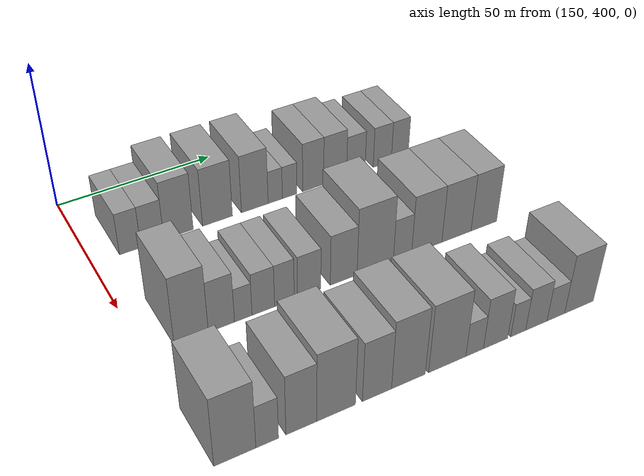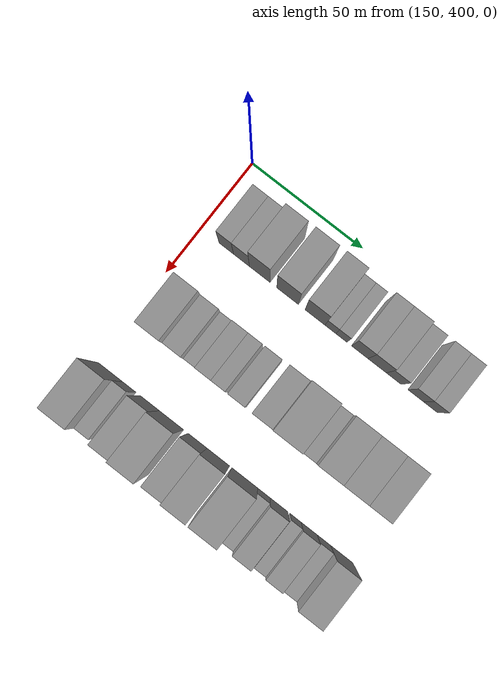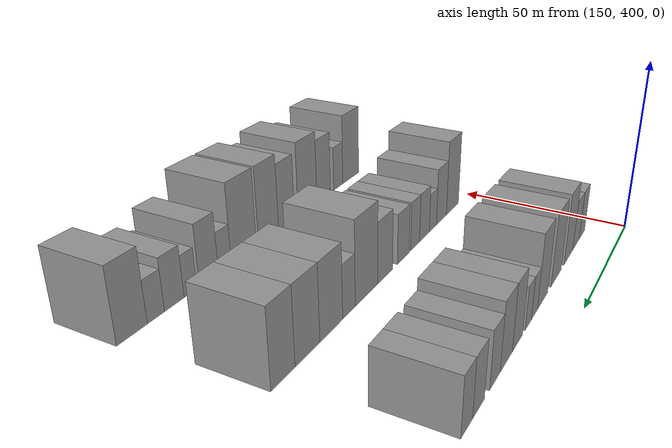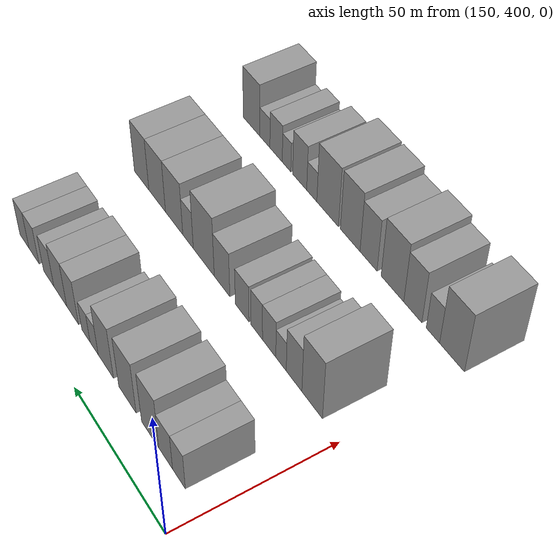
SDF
<sdf version="1.6">
 <world name="default">
  <model name="building_516">
   <static>1</static>
   <pose>170.0000 411.6567 0 0.000000 0.000000 0.000000</pose>
   <link name="link">
    <pose>0 0 7.50 0 0 0</pose>
    <collision name="collision"><geometry><box><size>20.0000 6.5364 15.0000</size></box></geometry></collision>
    <visual name="visual">
     <cast_shadows>0</cast_shadows>
     <geometry><box><size>20.0000 6.5364 15.0000</size></box></geometry>
     <material>
      <script>
       <uri>model://grey_wall/materials/scripts</uri>
       <uri>model://grey_wall/materials/textures</uri>
       <name>vrc/grey_wall</name>
      </script>
     </material>
    </visual>
   </link>
  </model>
  <model name="building_517">
   <static>1</static>
   <pose>170.0000 418.5098 0 0.000000 0.000000 0.000000</pose>
   <link name="link">
    <pose>0 0 7.50 0 0 0</pose>
    <collision name="collision"><geometry><box><size>20.0000 7.1698 15.0000</size></box></geometry></collision>
    <visual name="visual">
     <cast_shadows>0</cast_shadows>
     <geometry><box><size>20.0000 7.1698 15.0000</size></box></geometry>
     <material>
      <script>
       <uri>model://grey_wall/materials/scripts</uri>
       <uri>model://grey_wall/materials/textures</uri>
       <name>vrc/grey_wall</name>
      </script>
     </material>
    </visual>
   </link>
  </model>
  <model name="building_518">
   <static>1</static>
   <pose>170.0000 426.7633 0 0.000000 0.000000 0.000000</pose>
   <link name="link">
    <pose>0 0 10.50 0 0 0</pose>
    <collision name="collision"><geometry><box><size>20.0000 9.3373 21.0000</size></box></geometry></collision>
    <visual name="visual">
     <cast_shadows>0</cast_shadows>
     <geometry><box><size>20.0000 9.3373 21.0000</size></box></geometry>
     <material>
      <script>
       <uri>model://grey_wall/materials/scripts</uri>
       <uri>model://grey_wall/materials/textures</uri>
       <name>vrc/grey_wall</name>
      </script>
     </material>
    </visual>
   </link>
  </model>
  <model name="building_519">
   <static>1</static>
   <pose>170.0000 439.3193 0 0.000000 0.000000 0.000000</pose>
   <link name="link">
    <pose>0 0 10.50 0 0 0</pose>
    <collision name="collision"><geometry><box><size>20.0000 9.7746 21.0000</size></box></geometry></collision>
    <visual name="visual">
     <cast_shadows>0</cast_shadows>
     <geometry><box><size>20.0000 9.7746 21.0000</size></box></geometry>
     <material>
      <script>
       <uri>model://grey_wall/materials/scripts</uri>
       <uri>model://grey_wall/materials/textures</uri>
       <name>vrc/grey_wall</name>
      </script>
     </material>
    </visual>
   </link>
  </model>
  <model name="building_520">
   <static>1</static>
   <pose>170.0000 451.6900 0 0.000000 0.000000 0.000000</pose>
   <link name="link">
    <pose>0 0 10.50 0 0 0</pose>
    <collision name="collision"><geometry><box><size>20.0000 8.9669 21.0000</size></box></geometry></collision>
    <visual name="visual">
     <cast_shadows>0</cast_shadows>
     <geometry><box><size>20.0000 8.9669 21.0000</size></box></geometry>
     <material>
      <script>
       <uri>model://grey_wall/materials/scripts</uri>
       <uri>model://grey_wall/materials/textures</uri>
       <name>vrc/grey_wall</name>
      </script>
     </material>
    </visual>
   </link>
  </model>
  <model name="building_521">
   <static>1</static>
   <pose>170.0000 458.6050 0 0.000000 0.000000 0.000000</pose>
   <link name="link">
    <pose>0 0 6.00 0 0 0</pose>
    <collision name="collision"><geometry><box><size>20.0000 4.8632 12.0000</size></box></geometry></collision>
    <visual name="visual">
     <cast_shadows>0</cast_shadows>
     <geometry><box><size>20.0000 4.8632 12.0000</size></box></geometry>
     <material>
      <script>
       <uri>model://grey_wall/materials/scripts</uri>
       <uri>model://grey_wall/materials/textures</uri>
       <name>vrc/grey_wall</name>
      </script>
     </material>
    </visual>
   </link>
  </model>
  <model name="building_522">
   <static>1</static>
   <pose>170.0000 463.5516 0 0.000000 0.000000 0.000000</pose>
   <link name="link">
    <pose>0 0 6.00 0 0 0</pose>
    <collision name="collision"><geometry><box><size>20.0000 5.0298 12.0000</size></box></geometry></collision>
    <visual name="visual">
     <cast_shadows>0</cast_shadows>
     <geometry><box><size>20.0000 5.0298 12.0000</size></box></geometry>
     <material>
      <script>
       <uri>model://grey_wall/materials/scripts</uri>
       <uri>model://grey_wall/materials/textures</uri>
       <name>vrc/grey_wall</name>
      </script>
     </material>
    </visual>
   </link>
  </model>
  <model name="building_523">
   <static>1</static>
   <pose>170.0000 471.7505 0 0.000000 0.000000 0.000000</pose>
   <link name="link">
    <pose>0 0 9.00 0 0 0</pose>
    <collision name="collision"><geometry><box><size>20.0000 7.3681 18.0000</size></box></geometry></collision>
    <visual name="visual">
     <cast_shadows>0</cast_shadows>
     <geometry><box><size>20.0000 7.3681 18.0000</size></box></geometry>
     <material>
      <script>
       <uri>model://grey_wall/materials/scripts</uri>
       <uri>model://grey_wall/materials/textures</uri>
       <name>vrc/grey_wall</name>
      </script>
     </material>
    </visual>
   </link>
  </model>
  <model name="building_524">
   <static>1</static>
   <pose>170.0000 479.5307 0 0.000000 0.000000 0.000000</pose>
   <link name="link">
    <pose>0 0 9.00 0 0 0</pose>
    <collision name="collision"><geometry><box><size>20.0000 8.1923 18.0000</size></box></geometry></collision>
    <visual name="visual">
     <cast_shadows>0</cast_shadows>
     <geometry><box><size>20.0000 8.1923 18.0000</size></box></geometry>
     <material>
      <script>
       <uri>model://grey_wall/materials/scripts</uri>
       <uri>model://grey_wall/materials/textures</uri>
       <name>vrc/grey_wall</name>
      </script>
     </material>
    </visual>
   </link>
  </model>
  <model name="building_525">
   <static>1</static>
   <pose>170.0000 486.9849 0 0.000000 0.000000 0.000000</pose>
   <link name="link">
    <pose>0 0 7.50 0 0 0</pose>
    <collision name="collision"><geometry><box><size>20.0000 6.7159 15.0000</size></box></geometry></collision>
    <visual name="visual">
     <cast_shadows>0</cast_shadows>
     <geometry><box><size>20.0000 6.7159 15.0000</size></box></geometry>
     <material>
      <script>
       <uri>model://grey_wall/materials/scripts</uri>
       <uri>model://grey_wall/materials/textures</uri>
       <name>vrc/grey_wall</name>
      </script>
     </material>
    </visual>
   </link>
  </model>
  <model name="building_526">
   <static>1</static>
   <pose>170.0000 496.7155 0 0.000000 0.000000 0.000000</pose>
   <link name="link">
    <pose>0 0 7.50 0 0 0</pose>
    <collision name="collision"><geometry><box><size>20.0000 6.7454 15.0000</size></box></geometry></collision>
    <visual name="visual">
     <cast_shadows>0</cast_shadows>
     <geometry><box><size>20.0000 6.7454 15.0000</size></box></geometry>
     <material>
      <script>
       <uri>model://grey_wall/materials/scripts</uri>
       <uri>model://grey_wall/materials/textures</uri>
       <name>vrc/grey_wall</name>
      </script>
     </material>
    </visual>
   </link>
  </model>
  <model name="building_527">
   <static>1</static>
   <pose>170.0000 503.2382 0 0.000000 0.000000 0.000000</pose>
   <link name="link">
    <pose>0 0 7.50 0 0 0</pose>
    <collision name="collision"><geometry><box><size>20.0000 6.2999 15.0000</size></box></geometry></collision>
    <visual name="visual">
     <cast_shadows>0</cast_shadows>
     <geometry><box><size>20.0000 6.2999 15.0000</size></box></geometry>
     <material>
      <script>
       <uri>model://grey_wall/materials/scripts</uri>
       <uri>model://grey_wall/materials/textures</uri>
       <name>vrc/grey_wall</name>
      </script>
     </material>
    </visual>
   </link>
  </model>
  <model name="building_654">
   <static>1</static>
   <pose>210.0000 413.0757 0 0.000000 0.000000 0.000000</pose>
   <link name="link">
    <pose>0 0 12.00 0 0 0</pose>
    <collision name="collision"><geometry><box><size>20.0000 9.8297 24.0000</size></box></geometry></collision>
    <visual name="visual">
     <cast_shadows>0</cast_shadows>
     <geometry><box><size>20.0000 9.8297 24.0000</size></box></geometry>
     <material>
      <script>
       <uri>model://grey_wall/materials/scripts</uri>
       <uri>model://grey_wall/materials/textures</uri>
       <name>vrc/grey_wall</name>
      </script>
     </material>
    </visual>
   </link>
  </model>
  <model name="building_655">
   <static>1</static>
   <pose>210.0000 421.8358 0 0.000000 0.000000 0.000000</pose>
   <link name="link">
    <pose>0 0 9.00 0 0 0</pose>
    <collision name="collision"><geometry><box><size>20.0000 7.6905 18.0000</size></box></geometry></collision>
    <visual name="visual">
     <cast_shadows>0</cast_shadows>
     <geometry><box><size>20.0000 7.6905 18.0000</size></box></geometry>
     <material>
      <script>
       <uri>model://grey_wall/materials/scripts</uri>
       <uri>model://grey_wall/materials/textures</uri>
       <name>vrc/grey_wall</name>
      </script>
     </material>
    </visual>
   </link>
  </model>
  <model name="building_656">
   <static>1</static>
   <pose>210.0000 428.3003 0 0.000000 0.000000 0.000000</pose>
   <link name="link">
    <pose>0 0 6.00 0 0 0</pose>
    <collision name="collision"><geometry><box><size>20.0000 5.2385 12.0000</size></box></geometry></collision>
    <visual name="visual">
     <cast_shadows>0</cast_shadows>
     <geometry><box><size>20.0000 5.2385 12.0000</size></box></geometry>
     <material>
      <script>
       <uri>model://grey_wall/materials/scripts</uri>
       <uri>model://grey_wall/materials/textures</uri>
       <name>vrc/grey_wall</name>
      </script>
     </material>
    </visual>
   </link>
  </model>
  <model name="building_657">
   <static>1</static>
   <pose>210.0000 434.3405 0 0.000000 0.000000 0.000000</pose>
   <link name="link">
    <pose>0 0 7.50 0 0 0</pose>
    <collision name="collision"><geometry><box><size>20.0000 6.8418 15.0000</size></box></geometry></collision>
    <visual name="visual">
     <cast_shadows>0</cast_shadows>
     <geometry><box><size>20.0000 6.8418 15.0000</size></box></geometry>
     <material>
      <script>
       <uri>model://grey_wall/materials/scripts</uri>
       <uri>model://grey_wall/materials/textures</uri>
       <name>vrc/grey_wall</name>
      </script>
     </material>
    </visual>
   </link>
  </model>
  <model name="building_658">
   <static>1</static>
   <pose>210.0000 440.7841 0 0.000000 0.000000 0.000000</pose>
   <link name="link">
    <pose>0 0 7.50 0 0 0</pose>
    <collision name="collision"><geometry><box><size>20.0000 6.0456 15.0000</size></box></geometry></collision>
    <visual name="visual">
     <cast_shadows>0</cast_shadows>
     <geometry><box><size>20.0000 6.0456 15.0000</size></box></geometry>
     <material>
      <script>
       <uri>model://grey_wall/materials/scripts</uri>
       <uri>model://grey_wall/materials/textures</uri>
       <name>vrc/grey_wall</name>
      </script>
     </material>
    </visual>
   </link>
  </model>
  <model name="building_659">
   <static>1</static>
   <pose>210.0000 448.4721 0 0.000000 0.000000 0.000000</pose>
   <link name="link">
    <pose>0 0 7.50 0 0 0</pose>
    <collision name="collision"><geometry><box><size>20.0000 7.3304 15.0000</size></box></geometry></collision>
    <visual name="visual">
     <cast_shadows>0</cast_shadows>
     <geometry><box><size>20.0000 7.3304 15.0000</size></box></geometry>
     <material>
      <script>
       <uri>model://grey_wall/materials/scripts</uri>
       <uri>model://grey_wall/materials/textures</uri>
       <name>vrc/grey_wall</name>
      </script>
     </material>
    </visual>
   </link>
  </model>
  <model name="building_660">
   <static>1</static>
   <pose>210.0000 459.4520 0 0.000000 0.000000 0.000000</pose>
   <link name="link">
    <pose>0 0 9.00 0 0 0</pose>
    <collision name="collision"><geometry><box><size>20.0000 8.6294 18.0000</size></box></geometry></collision>
    <visual name="visual">
     <cast_shadows>0</cast_shadows>
     <geometry><box><size>20.0000 8.6294 18.0000</size></box></geometry>
     <material>
      <script>
       <uri>model://grey_wall/materials/scripts</uri>
       <uri>model://grey_wall/materials/textures</uri>
       <name>vrc/grey_wall</name>
      </script>
     </material>
    </visual>
   </link>
  </model>
  <model name="building_661">
   <static>1</static>
   <pose>210.0000 469.7653 0 0.000000 0.000000 0.000000</pose>
   <link name="link">
    <pose>0 0 12.00 0 0 0</pose>
    <collision name="collision"><geometry><box><size>20.0000 11.9972 24.0000</size></box></geometry></collision>
    <visual name="visual">
     <cast_shadows>0</cast_shadows>
     <geometry><box><size>20.0000 11.9972 24.0000</size></box></geometry>
     <material>
      <script>
       <uri>model://grey_wall/materials/scripts</uri>
       <uri>model://grey_wall/materials/textures</uri>
       <name>vrc/grey_wall</name>
      </script>
     </material>
    </visual>
   </link>
  </model>
  <model name="building_662">
   <static>1</static>
   <pose>210.0000 478.8574 0 0.000000 0.000000 0.000000</pose>
   <link name="link">
    <pose>0 0 7.50 0 0 0</pose>
    <collision name="collision"><geometry><box><size>20.0000 6.1870 15.0000</size></box></geometry></collision>
    <visual name="visual">
     <cast_shadows>0</cast_shadows>
     <geometry><box><size>20.0000 6.1870 15.0000</size></box></geometry>
     <material>
      <script>
       <uri>model://grey_wall/materials/scripts</uri>
       <uri>model://grey_wall/materials/textures</uri>
       <name>vrc/grey_wall</name>
      </script>
     </material>
    </visual>
   </link>
  </model>
  <model name="building_663">
   <static>1</static>
   <pose>210.0000 487.1656 0 0.000000 0.000000 0.000000</pose>
   <link name="link">
    <pose>0 0 10.50 0 0 0</pose>
    <collision name="collision"><geometry><box><size>20.0000 10.4295 21.0000</size></box></geometry></collision>
    <visual name="visual">
     <cast_shadows>0</cast_shadows>
     <geometry><box><size>20.0000 10.4295 21.0000</size></box></geometry>
     <material>
      <script>
       <uri>model://grey_wall/materials/scripts</uri>
       <uri>model://grey_wall/materials/textures</uri>
       <name>vrc/grey_wall</name>
      </script>
     </material>
    </visual>
   </link>
  </model>
  <model name="building_664">
   <static>1</static>
   <pose>210.0000 497.5308 0 0.000000 0.000000 0.000000</pose>
   <link name="link">
    <pose>0 0 10.50 0 0 0</pose>
    <collision name="collision"><geometry><box><size>20.0000 10.3009 21.0000</size></box></geometry></collision>
    <visual name="visual">
     <cast_shadows>0</cast_shadows>
     <geometry><box><size>20.0000 10.3009 21.0000</size></box></geometry>
     <material>
      <script>
       <uri>model://grey_wall/materials/scripts</uri>
       <uri>model://grey_wall/materials/textures</uri>
       <name>vrc/grey_wall</name>
      </script>
     </material>
    </visual>
   </link>
  </model>
  <model name="building_665">
   <static>1</static>
   <pose>210.0000 507.2967 0 0.000000 0.000000 0.000000</pose>
   <link name="link">
    <pose>0 0 10.50 0 0 0</pose>
    <collision name="collision"><geometry><box><size>20.0000 9.2308 21.0000</size></box></geometry></collision>
    <visual name="visual">
     <cast_shadows>0</cast_shadows>
     <geometry><box><size>20.0000 9.2308 21.0000</size></box></geometry>
     <material>
      <script>
       <uri>model://grey_wall/materials/scripts</uri>
       <uri>model://grey_wall/materials/textures</uri>
       <name>vrc/grey_wall</name>
      </script>
     </material>
    </visual>
   </link>
  </model>
  <model name="building_794">
   <static>1</static>
   <pose>250.0000 406.5885 0 0.000000 0.000000 0.000000</pose>
   <link name="link">
    <pose>0 0 12.00 0 0 0</pose>
    <collision name="collision"><geometry><box><size>20.0000 11.0333 24.0000</size></box></geometry></collision>
    <visual name="visual">
     <cast_shadows>0</cast_shadows>
     <geometry><box><size>20.0000 11.0333 24.0000</size></box></geometry>
     <material>
      <script>
       <uri>model://grey_wall/materials/scripts</uri>
       <uri>model://grey_wall/materials/textures</uri>
       <name>vrc/grey_wall</name>
      </script>
     </material>
    </visual>
   </link>
  </model>
  <model name="building_795">
   <static>1</static>
   <pose>250.0000 415.1516 0 0.000000 0.000000 0.000000</pose>
   <link name="link">
    <pose>0 0 7.50 0 0 0</pose>
    <collision name="collision"><geometry><box><size>20.0000 6.0928 15.0000</size></box></geometry></collision>
    <visual name="visual">
     <cast_shadows>0</cast_shadows>
     <geometry><box><size>20.0000 6.0928 15.0000</size></box></geometry>
     <material>
      <script>
       <uri>model://grey_wall/materials/scripts</uri>
       <uri>model://grey_wall/materials/textures</uri>
       <name>vrc/grey_wall</name>
      </script>
     </material>
    </visual>
   </link>
  </model>
  <model name="building_796">
   <static>1</static>
   <pose>250.0000 424.4468 0 0.000000 0.000000 0.000000</pose>
   <link name="link">
    <pose>0 0 10.50 0 0 0</pose>
    <collision name="collision"><geometry><box><size>20.0000 8.4977 21.0000</size></box></geometry></collision>
    <visual name="visual">
     <cast_shadows>0</cast_shadows>
     <geometry><box><size>20.0000 8.4977 21.0000</size></box></geometry>
     <material>
      <script>
       <uri>model://grey_wall/materials/scripts</uri>
       <uri>model://grey_wall/materials/textures</uri>
       <name>vrc/grey_wall</name>
      </script>
     </material>
    </visual>
   </link>
  </model>
  <model name="building_797">
   <static>1</static>
   <pose>250.0000 434.1774 0 0.000000 0.000000 0.000000</pose>
   <link name="link">
    <pose>0 0 12.00 0 0 0</pose>
    <collision name="collision"><geometry><box><size>20.0000 10.9636 24.0000</size></box></geometry></collision>
    <visual name="visual">
     <cast_shadows>0</cast_shadows>
     <geometry><box><size>20.0000 10.9636 24.0000</size></box></geometry>
     <material>
      <script>
       <uri>model://grey_wall/materials/scripts</uri>
       <uri>model://grey_wall/materials/textures</uri>
       <name>vrc/grey_wall</name>
      </script>
     </material>
    </visual>
   </link>
  </model>
  <model name="building_798">
   <static>1</static>
   <pose>250.0000 445.9232 0 0.000000 0.000000 0.000000</pose>
   <link name="link">
    <pose>0 0 10.50 0 0 0</pose>
    <collision name="collision"><geometry><box><size>20.0000 8.5279 21.0000</size></box></geometry></collision>
    <visual name="visual">
     <cast_shadows>0</cast_shadows>
     <geometry><box><size>20.0000 8.5279 21.0000</size></box></geometry>
     <material>
      <script>
       <uri>model://grey_wall/materials/scripts</uri>
       <uri>model://grey_wall/materials/textures</uri>
       <name>vrc/grey_wall</name>
      </script>
     </material>
    </visual>
   </link>
  </model>
  <model name="building_799">
   <static>1</static>
   <pose>250.0000 455.2482 0 0.000000 0.000000 0.000000</pose>
   <link name="link">
    <pose>0 0 12.00 0 0 0</pose>
    <collision name="collision"><geometry><box><size>20.0000 10.1222 24.0000</size></box></geometry></collision>
    <visual name="visual">
     <cast_shadows>0</cast_shadows>
     <geometry><box><size>20.0000 10.1222 24.0000</size></box></geometry>
     <material>
      <script>
       <uri>model://grey_wall/materials/scripts</uri>
       <uri>model://grey_wall/materials/textures</uri>
       <name>vrc/grey_wall</name>
      </script>
     </material>
    </visual>
   </link>
  </model>
  <model name="building_800">
   <static>1</static>
   <pose>250.0000 467.0812 0 0.000000 0.000000 0.000000</pose>
   <link name="link">
    <pose>0 0 12.00 0 0 0</pose>
    <collision name="collision"><geometry><box><size>20.0000 11.5438 24.0000</size></box></geometry></collision>
    <visual name="visual">
     <cast_shadows>0</cast_shadows>
     <geometry><box><size>20.0000 11.5438 24.0000</size></box></geometry>
     <material>
      <script>
       <uri>model://grey_wall/materials/scripts</uri>
       <uri>model://grey_wall/materials/textures</uri>
       <name>vrc/grey_wall</name>
      </script>
     </material>
    </visual>
   </link>
  </model>
  <model name="building_801">
   <static>1</static>
   <pose>250.0000 475.6279 0 0.000000 0.000000 0.000000</pose>
   <link name="link">
    <pose>0 0 6.00 0 0 0</pose>
    <collision name="collision"><geometry><box><size>20.0000 5.5496 12.0000</size></box></geometry></collision>
    <visual name="visual">
     <cast_shadows>0</cast_shadows>
     <geometry><box><size>20.0000 5.5496 12.0000</size></box></geometry>
     <material>
      <script>
       <uri>model://grey_wall/materials/scripts</uri>
       <uri>model://grey_wall/materials/textures</uri>
       <name>vrc/grey_wall</name>
      </script>
     </material>
    </visual>
   </link>
  </model>
  <model name="building_802">
   <static>1</static>
   <pose>250.0000 482.3125 0 0.000000 0.000000 0.000000</pose>
   <link name="link">
    <pose>0 0 9.00 0 0 0</pose>
    <collision name="collision"><geometry><box><size>20.0000 7.8195 18.0000</size></box></geometry></collision>
    <visual name="visual">
     <cast_shadows>0</cast_shadows>
     <geometry><box><size>20.0000 7.8195 18.0000</size></box></geometry>
     <material>
      <script>
       <uri>model://grey_wall/materials/scripts</uri>
       <uri>model://grey_wall/materials/textures</uri>
       <name>vrc/grey_wall</name>
      </script>
     </material>
    </visual>
   </link>
  </model>
  <model name="building_803">
   <static>1</static>
   <pose>250.0000 489.6782 0 0.000000 0.000000 0.000000</pose>
   <link name="link">
    <pose>0 0 6.00 0 0 0</pose>
    <collision name="collision"><geometry><box><size>20.0000 4.9118 12.0000</size></box></geometry></collision>
    <visual name="visual">
     <cast_shadows>0</cast_shadows>
     <geometry><box><size>20.0000 4.9118 12.0000</size></box></geometry>
     <material>
      <script>
       <uri>model://grey_wall/materials/scripts</uri>
       <uri>model://grey_wall/materials/textures</uri>
       <name>vrc/grey_wall</name>
      </script>
     </material>
    </visual>
   </link>
  </model>
  <model name="building_804">
   <static>1</static>
   <pose>250.0000 495.7068 0 0.000000 0.000000 0.000000</pose>
   <link name="link">
    <pose>0 0 7.50 0 0 0</pose>
    <collision name="collision"><geometry><box><size>20.0000 7.1455 15.0000</size></box></geometry></collision>
    <visual name="visual">
     <cast_shadows>0</cast_shadows>
     <geometry><box><size>20.0000 7.1455 15.0000</size></box></geometry>
     <material>
      <script>
       <uri>model://grey_wall/materials/scripts</uri>
       <uri>model://grey_wall/materials/textures</uri>
       <name>vrc/grey_wall</name>
      </script>
     </material>
    </visual>
   </link>
  </model>
  <model name="building_805">
   <static>1</static>
   <pose>250.0000 502.2445 0 0.000000 0.000000 0.000000</pose>
   <link name="link">
    <pose>0 0 6.00 0 0 0</pose>
    <collision name="collision"><geometry><box><size>20.0000 5.9298 12.0000</size></box></geometry></collision>
    <visual name="visual">
     <cast_shadows>0</cast_shadows>
     <geometry><box><size>20.0000 5.9298 12.0000</size></box></geometry>
     <material>
      <script>
       <uri>model://grey_wall/materials/scripts</uri>
       <uri>model://grey_wall/materials/textures</uri>
       <name>vrc/grey_wall</name>
      </script>
     </material>
    </visual>
   </link>
  </model>
  <model name="building_806">
   <static>1</static>
   <pose>250.0000 510.1840 0 0.000000 0.000000 0.000000</pose>
   <link name="link">
    <pose>0 0 10.50 0 0 0</pose>
    <collision name="collision"><geometry><box><size>20.0000 9.9491 21.0000</size></box></geometry></collision>
    <visual name="visual">
     <cast_shadows>0</cast_shadows>
     <geometry><box><size>20.0000 9.9491 21.0000</size></box></geometry>
     <material>
      <script>
       <uri>model://grey_wall/materials/scripts</uri>
       <uri>model://grey_wall/materials/textures</uri>
       <name>vrc/grey_wall</name>
      </script>
     </material>
    </visual>
   </link>
  </model>
 </world>
</sdf>
